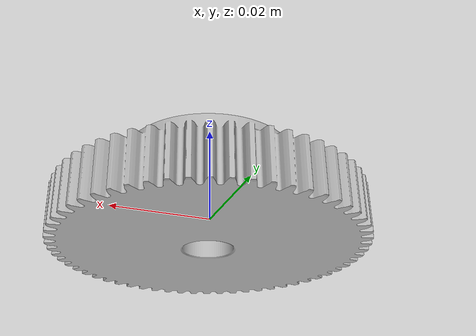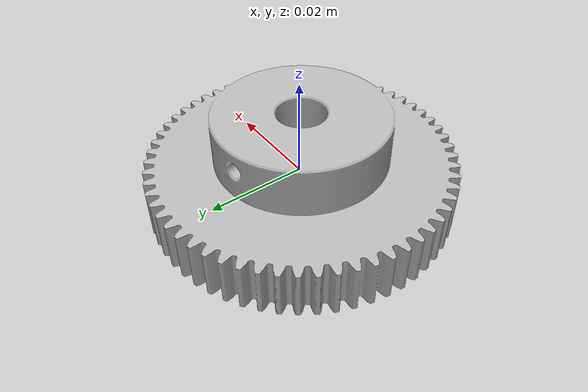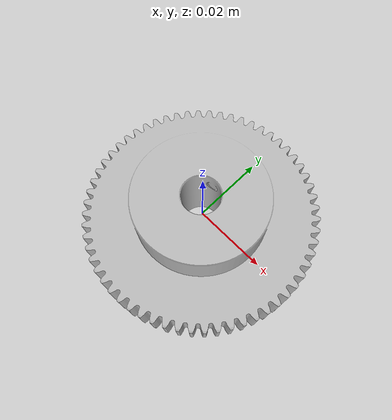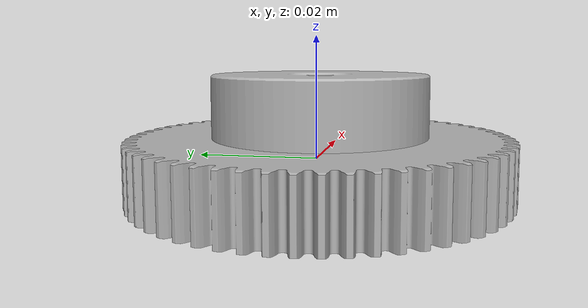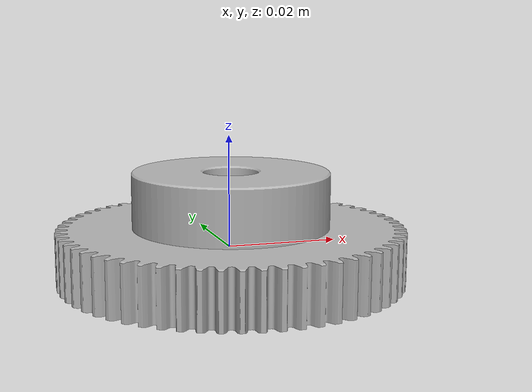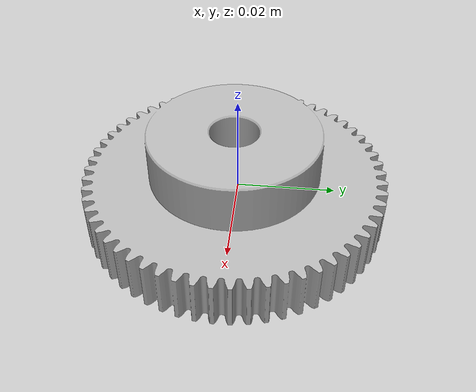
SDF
<?xml version='1.0'?>
<sdf version='1.4'>
  <model name="001_chips_can_textured">
    <pose>0 0 0 0 0 0</pose>
      <link name="body">
      <inertial>
        <!-- Volume-->
        <mass> 0.000036 </mass>

        <!-- Center of mass: -->
        <pose>0 0 0.000135 0 0 0</pose>

        <!-- Inertia matrix (-->
        <inertia>
          <ixx>  2.1487432990e-03 </ixx>
          <ixy>  9.4180405420e-07 </ixy>
          <ixz> -1.3349989036e-06 </ixz>
          <iyy>  2.1443682332e-03 </iyy>
          <iyz>  4.6281625659e-07 </iyz>
          <izz>  1.2524580513e-03 </izz>
        </inertia>
      </inertial>

        <visual name="visual">
          <geometry>
            <mesh><uri>model://Industrial components/gear/gear.dae</uri></mesh>
          </geometry>
        </visual>

        <collision name="collision">
          <geometry>
            <mesh><uri>model://Industrial components/gear/gear.dae</uri></mesh>
          </geometry>
          <max_contacts>10</max_contacts>
          <surface>
            <friction>
              <ode>
                <mu>0.8</mu>
                <mu2>0.8</mu2>
                <slip1>0</slip1>
                <slip2>0</slip2>
              </ode>
              <torsional>
                <ode/>
              </torsional>
            </friction>
            <contact>
              <ode>
                <kp>1000000.0</kp>
                <kd>1.0</kd>
                <max_vel>0.0</max_vel>
              </ode>
            </contact>
          </surface>
        </collision>
      </link>
  </model>
</sdf>
